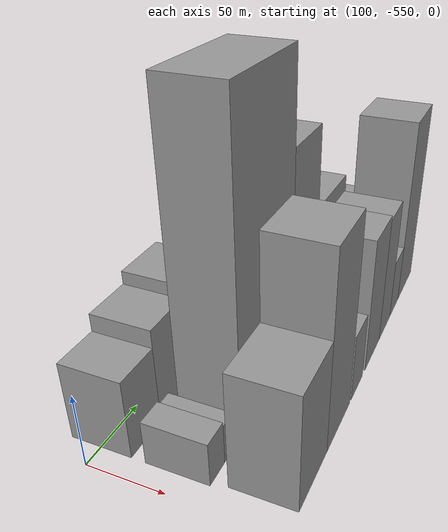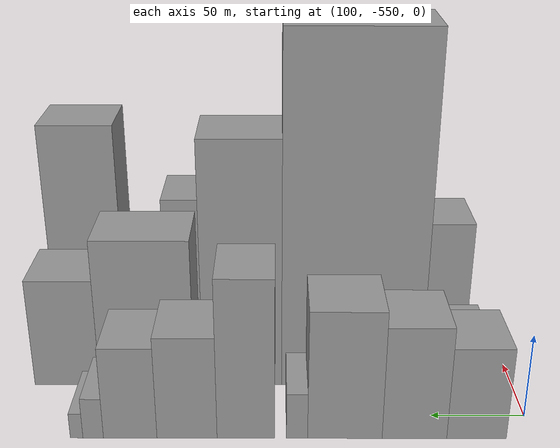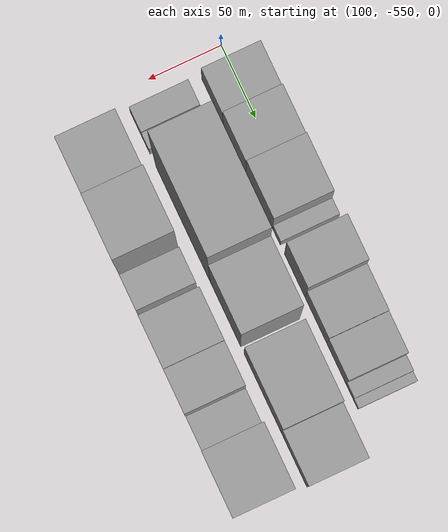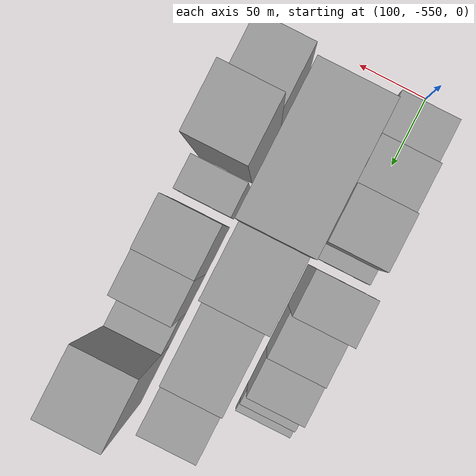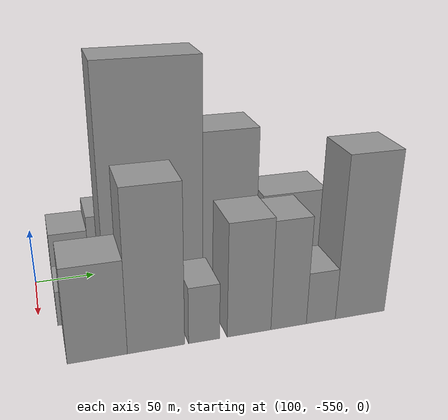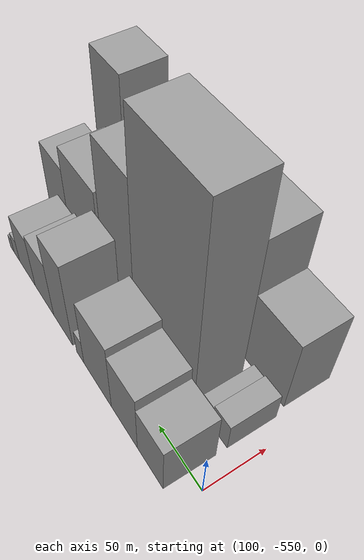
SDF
<sdf version="1.6">
 <world name="default">
  <model name="building_1">
   <static>1</static>
   <pose>100.0000 -520.5226 0 0.000000 0.000000 0.000000</pose>
   <link name="link">
    <pose>0 0 27.00 0 0 0</pose>
    <collision name="collision"><geometry><box><size>40.0000 30.9549 54.0000</size></box></geometry></collision>
    <visual name="visual">
     <cast_shadows>0</cast_shadows>
     <geometry><box><size>40.0000 30.9549 54.0000</size></box></geometry>
     <material>
      <script>
       <uri>model://grey_wall/materials/scripts</uri>
       <uri>model://grey_wall/materials/textures</uri>
       <name>vrc/grey_wall</name>
      </script>
     </material>
    </visual>
   </link>
  </model>
  <model name="building_2">
   <static>1</static>
   <pose>100.0000 -488.2523 0 0.000000 0.000000 0.000000</pose>
   <link name="link">
    <pose>0 0 33.00 0 0 0</pose>
    <collision name="collision"><geometry><box><size>40.0000 33.5855 66.0000</size></box></geometry></collision>
    <visual name="visual">
     <cast_shadows>0</cast_shadows>
     <geometry><box><size>40.0000 33.5855 66.0000</size></box></geometry>
     <material>
      <script>
       <uri>model://grey_wall/materials/scripts</uri>
       <uri>model://grey_wall/materials/textures</uri>
       <name>vrc/grey_wall</name>
      </script>
     </material>
    </visual>
   </link>
  </model>
  <model name="building_3">
   <static>1</static>
   <pose>100.0000 -452.0912 0 0.000000 0.000000 0.000000</pose>
   <link name="link">
    <pose>0 0 37.50 0 0 0</pose>
    <collision name="collision"><geometry><box><size>40.0000 38.7367 75.0000</size></box></geometry></collision>
    <visual name="visual">
     <cast_shadows>0</cast_shadows>
     <geometry><box><size>40.0000 38.7367 75.0000</size></box></geometry>
     <material>
      <script>
       <uri>model://grey_wall/materials/scripts</uri>
       <uri>model://grey_wall/materials/textures</uri>
       <name>vrc/grey_wall</name>
      </script>
     </material>
    </visual>
   </link>
  </model>
  <model name="building_4">
   <static>1</static>
   <pose>100.0000 -427.2255 0 0.000000 0.000000 0.000000</pose>
   <link name="link">
    <pose>0 0 13.50 0 0 0</pose>
    <collision name="collision"><geometry><box><size>40.0000 10.9949 27.0000</size></box></geometry></collision>
    <visual name="visual">
     <cast_shadows>0</cast_shadows>
     <geometry><box><size>40.0000 10.9949 27.0000</size></box></geometry>
     <material>
      <script>
       <uri>model://grey_wall/materials/scripts</uri>
       <uri>model://grey_wall/materials/textures</uri>
       <name>vrc/grey_wall</name>
      </script>
     </material>
    </visual>
   </link>
  </model>
  <model name="building_5">
   <static>1</static>
   <pose>100.0000 -400.7128 0 0.000000 0.000000 0.000000</pose>
   <link name="link">
    <pose>0 0 46.50 0 0 0</pose>
    <collision name="collision"><geometry><box><size>40.0000 30.0306 93.0000</size></box></geometry></collision>
    <visual name="visual">
     <cast_shadows>0</cast_shadows>
     <geometry><box><size>40.0000 30.0306 93.0000</size></box></geometry>
     <material>
      <script>
       <uri>model://grey_wall/materials/scripts</uri>
       <uri>model://grey_wall/materials/textures</uri>
       <name>vrc/grey_wall</name>
      </script>
     </material>
    </visual>
   </link>
  </model>
  <model name="building_6">
   <static>1</static>
   <pose>100.0000 -370.0675 0 0.000000 0.000000 0.000000</pose>
   <link name="link">
    <pose>0 0 30.00 0 0 0</pose>
    <collision name="collision"><geometry><box><size>40.0000 31.2598 60.0000</size></box></geometry></collision>
    <visual name="visual">
     <cast_shadows>0</cast_shadows>
     <geometry><box><size>40.0000 31.2598 60.0000</size></box></geometry>
     <material>
      <script>
       <uri>model://grey_wall/materials/scripts</uri>
       <uri>model://grey_wall/materials/textures</uri>
       <name>vrc/grey_wall</name>
      </script>
     </material>
    </visual>
   </link>
  </model>
  <model name="building_7">
   <static>1</static>
   <pose>100.0000 -340.5071 0 0.000000 0.000000 0.000000</pose>
   <link name="link">
    <pose>0 0 27.00 0 0 0</pose>
    <collision name="collision"><geometry><box><size>40.0000 27.8611 54.0000</size></box></geometry></collision>
    <visual name="visual">
     <cast_shadows>0</cast_shadows>
     <geometry><box><size>40.0000 27.8611 54.0000</size></box></geometry>
     <material>
      <script>
       <uri>model://grey_wall/materials/scripts</uri>
       <uri>model://grey_wall/materials/textures</uri>
       <name>vrc/grey_wall</name>
      </script>
     </material>
    </visual>
   </link>
  </model>
  <model name="building_8">
   <static>1</static>
   <pose>100.0000 -321.2389 0 0.000000 0.000000 0.000000</pose>
   <link name="link">
    <pose>0 0 12.00 0 0 0</pose>
    <collision name="collision"><geometry><box><size>40.0000 10.6752 24.0000</size></box></geometry></collision>
    <visual name="visual">
     <cast_shadows>0</cast_shadows>
     <geometry><box><size>40.0000 10.6752 24.0000</size></box></geometry>
     <material>
      <script>
       <uri>model://grey_wall/materials/scripts</uri>
       <uri>model://grey_wall/materials/textures</uri>
       <name>vrc/grey_wall</name>
      </script>
     </material>
    </visual>
   </link>
  </model>
  <model name="building_9">
   <static>1</static>
   <pose>100.0000 -312.6179 0 0.000000 0.000000 0.000000</pose>
   <link name="link">
    <pose>0 0 7.50 0 0 0</pose>
    <collision name="collision"><geometry><box><size>40.0000 6.5669 15.0000</size></box></geometry></collision>
    <visual name="visual">
     <cast_shadows>0</cast_shadows>
     <geometry><box><size>40.0000 6.5669 15.0000</size></box></geometry>
     <material>
      <script>
       <uri>model://grey_wall/materials/scripts</uri>
       <uri>model://grey_wall/materials/textures</uri>
       <name>vrc/grey_wall</name>
      </script>
     </material>
    </visual>
   </link>
  </model>
  <model name="building_33">
   <static>1</static>
   <pose>149.0000 -527.3636 0 0.000000 0.000000 0.000000</pose>
   <link name="link">
    <pose>0 0 15.00 0 0 0</pose>
    <collision name="collision"><geometry><box><size>40.0000 17.2728 30.0000</size></box></geometry></collision>
    <visual name="visual">
     <cast_shadows>0</cast_shadows>
     <geometry><box><size>40.0000 17.2728 30.0000</size></box></geometry>
     <material>
      <script>
       <uri>model://grey_wall/materials/scripts</uri>
       <uri>model://grey_wall/materials/textures</uri>
       <name>vrc/grey_wall</name>
      </script>
     </material>
    </visual>
   </link>
  </model>
  <model name="building_34">
   <static>1</static>
   <pose>149.0000 -513.0328 0 0.000000 0.000000 0.000000</pose>
   <link name="link">
    <pose>0 0 13.50 0 0 0</pose>
    <collision name="collision"><geometry><box><size>40.0000 11.3889 27.0000</size></box></geometry></collision>
    <visual name="visual">
     <cast_shadows>0</cast_shadows>
     <geometry><box><size>40.0000 11.3889 27.0000</size></box></geometry>
     <material>
      <script>
       <uri>model://grey_wall/materials/scripts</uri>
       <uri>model://grey_wall/materials/textures</uri>
       <name>vrc/grey_wall</name>
      </script>
     </material>
    </visual>
   </link>
  </model>
  <model name="building_35">
   <static>1</static>
   <pose>149.0000 -458.8959 0 0.000000 0.000000 0.000000</pose>
   <link name="link">
    <pose>0 0 102.00 0 0 0</pose>
    <collision name="collision"><geometry><box><size>40.0000 78.8850 204.0000</size></box></geometry></collision>
    <visual name="visual">
     <cast_shadows>0</cast_shadows>
     <geometry><box><size>40.0000 78.8850 204.0000</size></box></geometry>
     <material>
      <script>
       <uri>model://grey_wall/materials/scripts</uri>
       <uri>model://grey_wall/materials/textures</uri>
       <name>vrc/grey_wall</name>
      </script>
     </material>
    </visual>
   </link>
  </model>
  <model name="building_36">
   <static>1</static>
   <pose>149.0000 -397.2426 0 0.000000 0.000000 0.000000</pose>
   <link name="link">
    <pose>0 0 73.50 0 0 0</pose>
    <collision name="collision"><geometry><box><size>40.0000 44.4216 147.0000</size></box></geometry></collision>
    <visual name="visual">
     <cast_shadows>0</cast_shadows>
     <geometry><box><size>40.0000 44.4216 147.0000</size></box></geometry>
     <material>
      <script>
       <uri>model://grey_wall/materials/scripts</uri>
       <uri>model://grey_wall/materials/textures</uri>
       <name>vrc/grey_wall</name>
      </script>
     </material>
    </visual>
   </link>
  </model>
  <model name="building_37">
   <static>1</static>
   <pose>149.0000 -343.1438 0 0.000000 0.000000 0.000000</pose>
   <link name="link">
    <pose>0 0 45.00 0 0 0</pose>
    <collision name="collision"><geometry><box><size>40.0000 53.7761 90.0000</size></box></geometry></collision>
    <visual name="visual">
     <cast_shadows>0</cast_shadows>
     <geometry><box><size>40.0000 53.7761 90.0000</size></box></geometry>
     <material>
      <script>
       <uri>model://grey_wall/materials/scripts</uri>
       <uri>model://grey_wall/materials/textures</uri>
       <name>vrc/grey_wall</name>
      </script>
     </material>
    </visual>
   </link>
  </model>
  <model name="building_38">
   <static>1</static>
   <pose>149.0000 -297.8388 0 0.000000 0.000000 0.000000</pose>
   <link name="link">
    <pose>0 0 33.00 0 0 0</pose>
    <collision name="collision"><geometry><box><size>40.0000 36.8337 66.0000</size></box></geometry></collision>
    <visual name="visual">
     <cast_shadows>0</cast_shadows>
     <geometry><box><size>40.0000 36.8337 66.0000</size></box></geometry>
     <material>
      <script>
       <uri>model://grey_wall/materials/scripts</uri>
       <uri>model://grey_wall/materials/textures</uri>
       <name>vrc/grey_wall</name>
      </script>
     </material>
    </visual>
   </link>
  </model>
  <model name="building_61">
   <static>1</static>
   <pose>198.0000 -511.3610 0 0.000000 0.000000 0.000000</pose>
   <link name="link">
    <pose>0 0 39.00 0 0 0</pose>
    <collision name="collision"><geometry><box><size>40.0000 43.2779 78.0000</size></box></geometry></collision>
    <visual name="visual">
     <cast_shadows>0</cast_shadows>
     <geometry><box><size>40.0000 43.2779 78.0000</size></box></geometry>
     <material>
      <script>
       <uri>model://grey_wall/materials/scripts</uri>
       <uri>model://grey_wall/materials/textures</uri>
       <name>vrc/grey_wall</name>
      </script>
     </material>
    </visual>
   </link>
  </model>
  <model name="building_62">
   <static>1</static>
   <pose>198.0000 -468.3047 0 0.000000 0.000000 0.000000</pose>
   <link name="link">
    <pose>0 0 66.00 0 0 0</pose>
    <collision name="collision"><geometry><box><size>40.0000 42.8347 132.0000</size></box></geometry></collision>
    <visual name="visual">
     <cast_shadows>0</cast_shadows>
     <geometry><box><size>40.0000 42.8347 132.0000</size></box></geometry>
     <material>
      <script>
       <uri>model://grey_wall/materials/scripts</uri>
       <uri>model://grey_wall/materials/textures</uri>
       <name>vrc/grey_wall</name>
      </script>
     </material>
    </visual>
   </link>
  </model>
  <model name="building_63">
   <static>1</static>
   <pose>198.0000 -431.8566 0 0.000000 0.000000 0.000000</pose>
   <link name="link">
    <pose>0 0 24.00 0 0 0</pose>
    <collision name="collision"><geometry><box><size>40.0000 24.0615 48.0000</size></box></geometry></collision>
    <visual name="visual">
     <cast_shadows>0</cast_shadows>
     <geometry><box><size>40.0000 24.0615 48.0000</size></box></geometry>
     <material>
      <script>
       <uri>model://grey_wall/materials/scripts</uri>
       <uri>model://grey_wall/materials/textures</uri>
       <name>vrc/grey_wall</name>
      </script>
     </material>
    </visual>
   </link>
  </model>
  <model name="building_64">
   <static>1</static>
   <pose>198.0000 -396.2676 0 0.000000 0.000000 0.000000</pose>
   <link name="link">
    <pose>0 0 48.00 0 0 0</pose>
    <collision name="collision"><geometry><box><size>40.0000 35.1165 96.0000</size></box></geometry></collision>
    <visual name="visual">
     <cast_shadows>0</cast_shadows>
     <geometry><box><size>40.0000 35.1165 96.0000</size></box></geometry>
     <material>
      <script>
       <uri>model://grey_wall/materials/scripts</uri>
       <uri>model://grey_wall/materials/textures</uri>
       <name>vrc/grey_wall</name>
      </script>
     </material>
    </visual>
   </link>
  </model>
  <model name="building_65">
   <static>1</static>
   <pose>198.0000 -364.0146 0 0.000000 0.000000 0.000000</pose>
   <link name="link">
    <pose>0 0 46.50 0 0 0</pose>
    <collision name="collision"><geometry><box><size>40.0000 29.3894 93.0000</size></box></geometry></collision>
    <visual name="visual">
     <cast_shadows>0</cast_shadows>
     <geometry><box><size>40.0000 29.3894 93.0000</size></box></geometry>
     <material>
      <script>
       <uri>model://grey_wall/materials/scripts</uri>
       <uri>model://grey_wall/materials/textures</uri>
       <name>vrc/grey_wall</name>
      </script>
     </material>
    </visual>
   </link>
  </model>
  <model name="building_66">
   <static>1</static>
   <pose>198.0000 -337.0058 0 0.000000 0.000000 0.000000</pose>
   <link name="link">
    <pose>0 0 22.50 0 0 0</pose>
    <collision name="collision"><geometry><box><size>40.0000 24.6281 45.0000</size></box></geometry></collision>
    <visual name="visual">
     <cast_shadows>0</cast_shadows>
     <geometry><box><size>40.0000 24.6281 45.0000</size></box></geometry>
     <material>
      <script>
       <uri>model://grey_wall/materials/scripts</uri>
       <uri>model://grey_wall/materials/textures</uri>
       <name>vrc/grey_wall</name>
      </script>
     </material>
    </visual>
   </link>
  </model>
  <model name="building_67">
   <static>1</static>
   <pose>198.0000 -303.2757 0 0.000000 0.000000 0.000000</pose>
   <link name="link">
    <pose>0 0 69.00 0 0 0</pose>
    <collision name="collision"><geometry><box><size>40.0000 42.8323 138.0000</size></box></geometry></collision>
    <visual name="visual">
     <cast_shadows>0</cast_shadows>
     <geometry><box><size>40.0000 42.8323 138.0000</size></box></geometry>
     <material>
      <script>
       <uri>model://grey_wall/materials/scripts</uri>
       <uri>model://grey_wall/materials/textures</uri>
       <name>vrc/grey_wall</name>
      </script>
     </material>
    </visual>
   </link>
  </model>
 </world>
</sdf>
